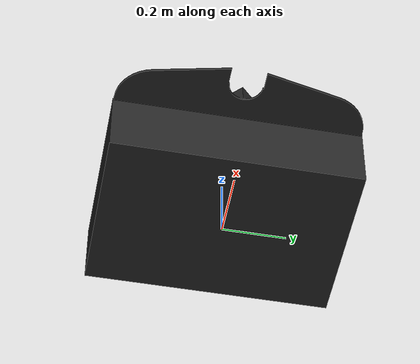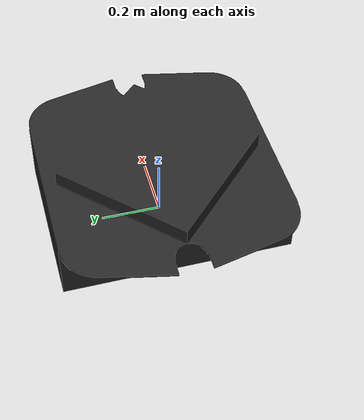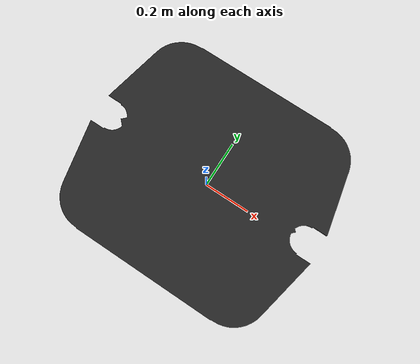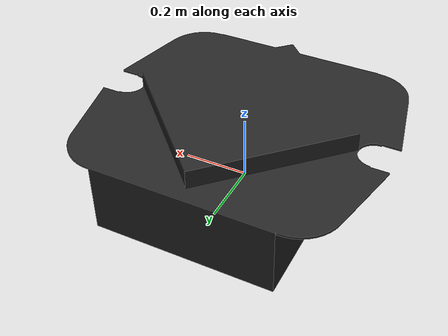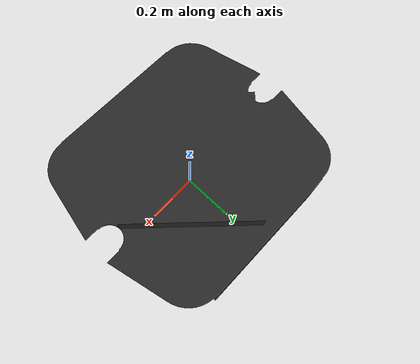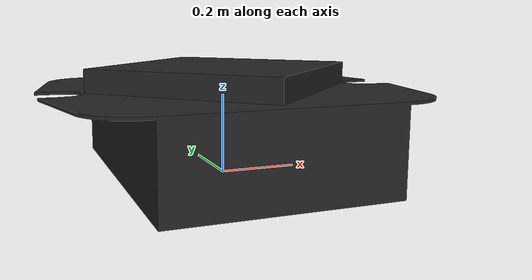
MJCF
<mujoco model="body">
  <default>
    <default class="visual">
      <geom group="2" type="mesh" contype="0" conaffinity="0"/>
    </default>
    <default class="collision">
      <geom group="3" type="mesh"/>
    </default>
  </default>
  <asset>
    <material name="mtl_body" specular="0.20000000000000004" shininess="1.0" rgba="0.14901961 0.14901961 0.14901961 1.0"/>
    <mesh file="body.obj"/>
  </asset>
  <worldbody>
    <body name="body">
      <geom material="mtl_body" mesh="body" class="visual"/>
      <geom mesh="body" class="collision"/>
    </body>
  </worldbody>
</mujoco>
